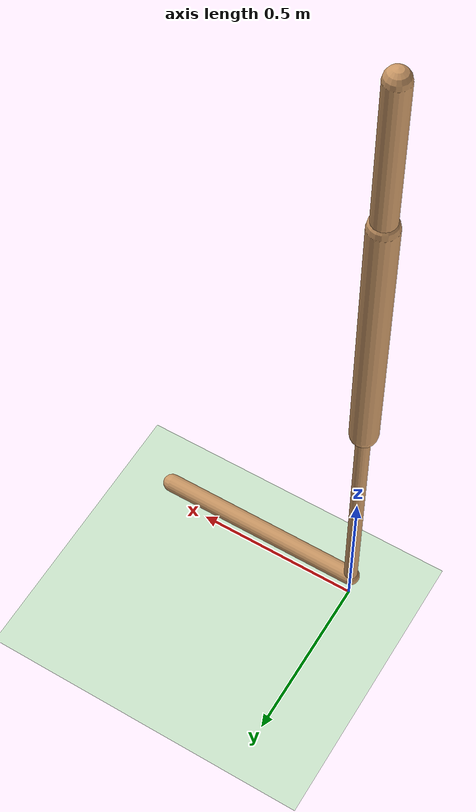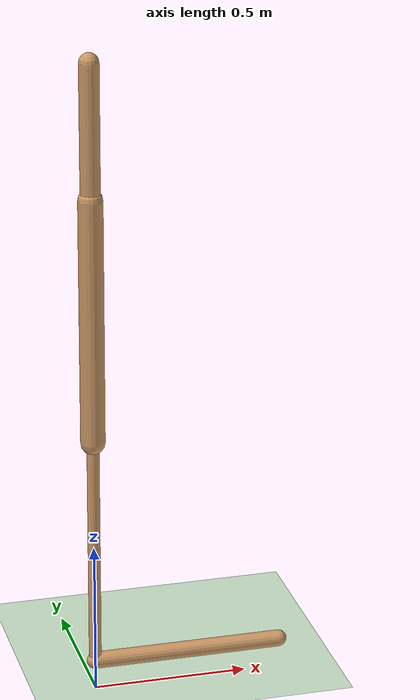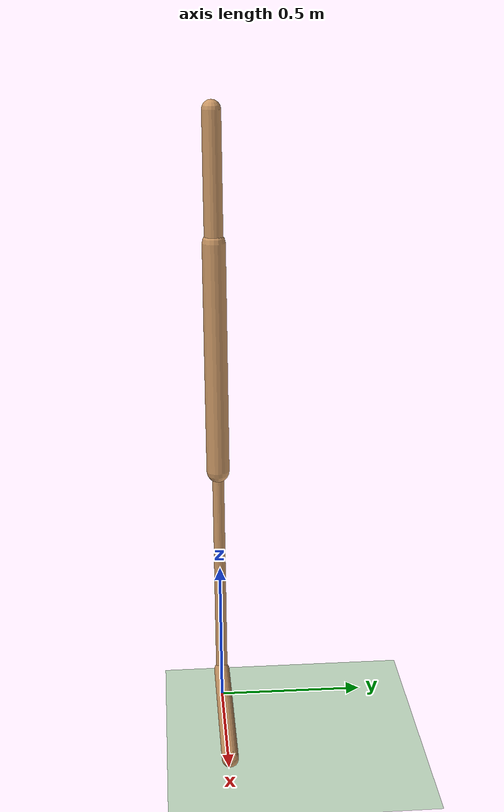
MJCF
<mujoco model="walker2d">
  <compiler angle="degree" inertiafromgeom="true" />
  <default>
    <joint armature="0.01" damping=".1" limited="true" />
    <geom conaffinity="0" condim="3" contype="1" density="1000" friction=".7 .1 .1" rgba="0.8 0.6 .4 1" />
  </default>
  <option integrator="RK4" timestep="0.002" />
  <worldbody>
    <light cutoff="100" diffuse="1 1 1" dir="-0 0 -1.3" directional="true" exponent="1" pos="0 0 1.3" specular=".1 .1 .1" />
    <geom conaffinity="1" condim="3" name="floor" pos="0 0 0" rgba="0.8 0.9 0.8 1" size="40 40 40" type="plane" material="MatPlane" />
    <body name="torso" pos="0 0 1.8768245935440064">
      <camera name="track" mode="trackcom" pos="0 -5 -1.25" xyaxes="1 0 0 0 0 1" />
      <joint armature="0" axis="1 0 0" damping="0" limited="false" name="rootx" pos="0 0 -1.25" stiffness="0" type="slide" />
      <joint armature="0" axis="0 0 1" damping="0" limited="false" name="rootz" pos="0 0 -1.25" ref="1.25" stiffness="0" type="slide" />
      <joint armature="0" axis="0 1 0" damping="0" limited="false" name="rooty" pos="0 0 0" stiffness="0" type="hinge" />
      <geom friction="0.9" name="torso_geom" size="0.031644467264413834 0.21523159742355347" type="capsule" />
      <body name="thigh" pos="0 0 -0.21523159742355347">
        <joint axis="0 -1 0" name="thigh_joint" pos="0 0 0" range="-150 0" type="hinge" />
        <site name="torso_thigh_site" pos="0 0 0" size="0.01" type="sphere" rgba="1 0 0 0.5" />
        <geom friction="0.9" pos="0 0 -0.3978618085384369" name="thigh_geom" size="0.0392414890229702 0.3978618085384369" type="capsule" />
        <body name="leg" pos="0 0 -1.1786583065986633">
          <joint axis="0 -1 0" name="leg_joint" pos="0 0 0.38293468952178955" range="-150 0" type="hinge" />
          <site name="thigh_leg_site" pos="0 0 0.25" size="0.01" type="sphere" rgba="1 0 0 0.5" />
          <geom friction="0.9" name="leg_geom" size="0.01998499408364296 0.38293468952178955" type="capsule" />
          <body name="foot" pos="0.6134697198867798 0 -0.48293468952178953">
            <joint axis="0 -1 0" name="foot_joint" pos="-0.6134697198867798 0 0.1" range="-45 45" type="hinge" />
            <site name="leg_foot_site" pos="-0.2 0 0.1" size="0.01" type="sphere" rgba="1 0 0 0.5" />
            <geom friction="0.9" pos="-0.3067348599433899 0 0.1" quat="0.70710678118654757 0 -0.70710678118654746 0" name="foot_geom" size="0.02727801352739334 0.3067348599433899" type="capsule" />
          </body>
        </body>
      </body>

      <body name="thigh_left" pos="0 0 -0.21523159742355347">
        <joint axis="0 -1 0" name="thigh_left_joint" pos="0 0 0" range="-150 0" type="hinge" />
        <site name="torso_thigh_left_site" pos="0 0 0" size="0.01" type="sphere" rgba="1 0 0 0.5" />
        <geom friction="0.9" name="thigh_left_geom" rgba=".7 .3 .6 1" size="0.0392414890229702 0.3978618085384369" pos="0 0 -0.3978618085384369" type="capsule" />
        <body name="leg_left" pos="0 0 -1.1786583065986633">
          <joint axis="0 -1 0" name="leg_left_joint" pos="0 0 0.38293468952178955" range="-150 0" type="hinge" />
          <site name="thigh_leg_left_site" pos="0 0 0.25" size="0.01" type="sphere" rgba="1 0 0 0.5" />
          <geom friction="0.9" name="leg_left_geom" rgba=".7 .3 .6 1" size="0.01998499408364296 0.38293468952178955" type="capsule" />
          <body name="foot_left" pos="0.6134697198867798 0 -0.48293468952178953">
            <joint axis="0 -1 0" name="foot_left_joint" pos="-0.6134697198867798 0 0.1" range="-45 45" type="hinge" />
            <site name="leg_foot_left_site" pos="-0.2 0 0.1" size="0.01" type="sphere" rgba="1 0 0 0.5" />
            <geom friction="1.9" name="foot_left_geom" rgba=".7 .3 .6 1" size="0.02727801352739334 0.3067348599433899" pos="-0.3067348599433899 0 0.1" type="capsule" quat="0.70710678118654757 0 -0.70710678118654746 0" />
          </body>
        </body>
      </body>
    </body>
  </worldbody>
  <actuator>

    <motor ctrllimited="true" ctrlrange="-1.0 1.0" gear="108.9182569081411" joint="thigh_joint" />
    <motor ctrllimited="true" ctrlrange="-1.0 1.0" gear="38.23602765003869" joint="leg_joint" />
    <motor ctrllimited="true" ctrlrange="-1.0 1.0" gear="63.39954130101236" joint="foot_joint" />
    <motor ctrllimited="true" ctrlrange="-1.0 1.0" gear="108.9182569081411" joint="thigh_left_joint" />
    <motor ctrllimited="true" ctrlrange="-1.0 1.0" gear="38.23602765003869" joint="leg_left_joint" />
    <motor ctrllimited="true" ctrlrange="-1.0 1.0" gear="63.39954130101236" joint="foot_left_joint" />

  </actuator>
    <asset>
        <texture type="skybox" builtin="gradient" rgb1=".4 .5 .6" rgb2="0 0 0" width="100" height="100" />
        <texture builtin="flat" height="1278" mark="cross" markrgb="1 1 1" name="texgeom" random="0.01" rgb1="0.8 0.6 0.4" rgb2="0.8 0.6 0.4" type="cube" width="127" />
        <texture builtin="checker" height="100" name="texplane" rgb1="0 0 0" rgb2="0.8 0.8 0.8" type="2d" width="100" />
        <material name="MatPlane" reflectance="0.5" shininess="1" specular="1" texrepeat="60 60" texture="texplane" />
        <material name="geom" texture="texgeom" texuniform="true" />
    </asset>

  <sensor>
    <force site="torso_thigh_site" name="torso_thigh_sensor" />
    <force site="thigh_leg_site" name="thigh_leg_sensor" />
    <force site="leg_foot_site" name="leg_foot_sensor" />
    <force site="torso_thigh_left_site" name="torso_thigh_left_sensor" />
    <force site="thigh_leg_left_site" name="thigh_leg_left_sensor" />
    <force site="leg_foot_left_site" name="leg_foot_left_sensor" />
  </sensor>
</mujoco>
